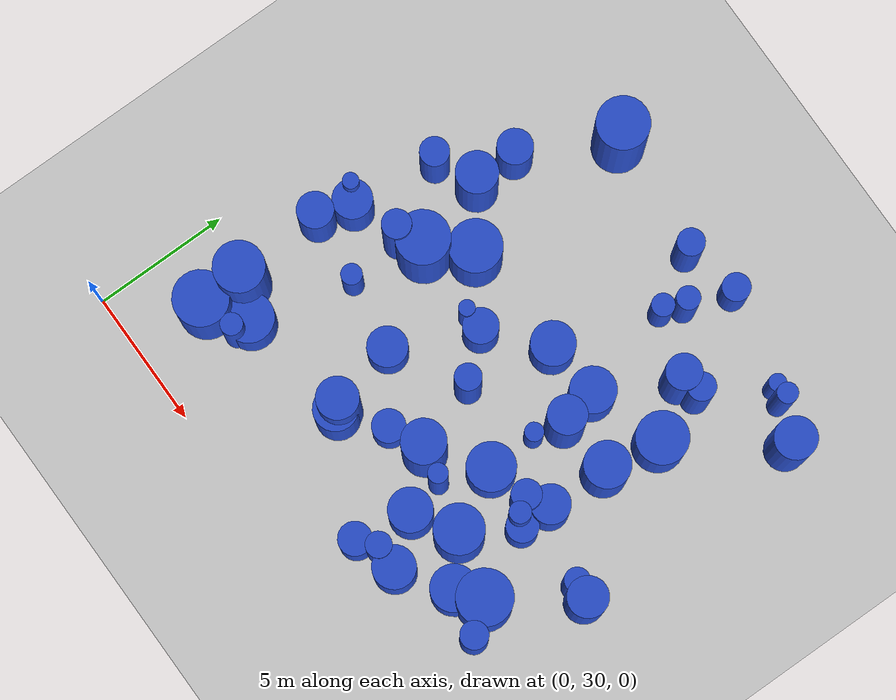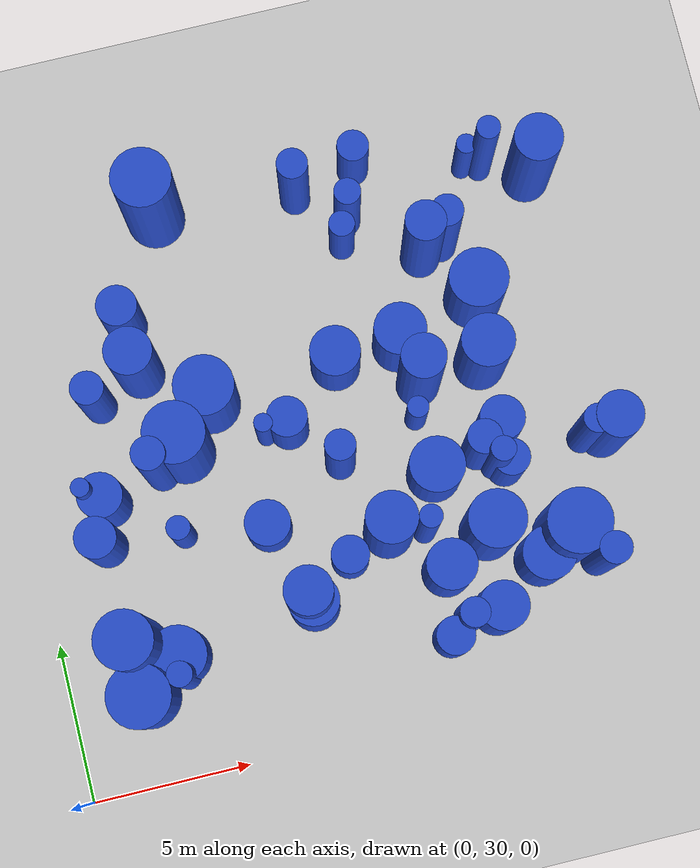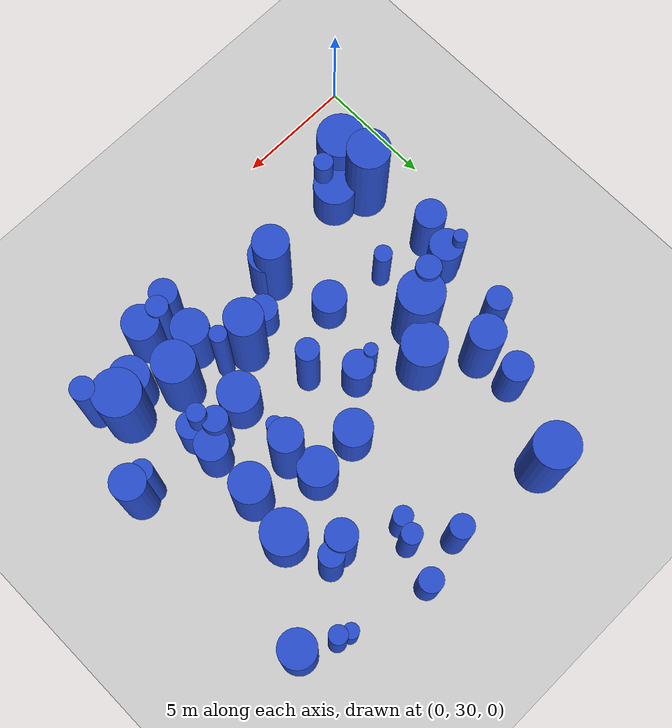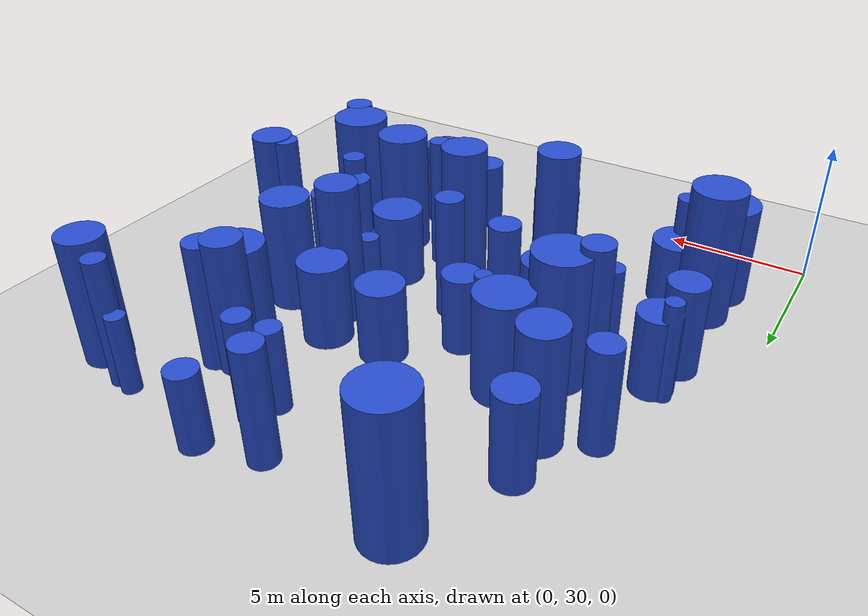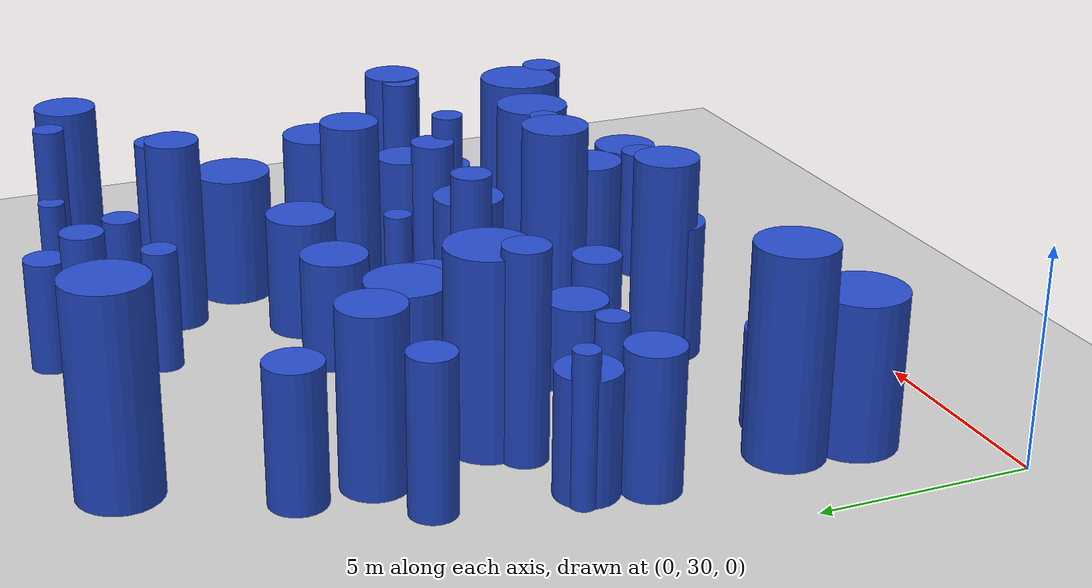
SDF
<sdf version="1.6">
 <world name="default">
  <model name="ground_plane">
   <static>1</static>
   <link name="link">
    <collision name="collision">
     <geometry><plane><normal>0 0 1</normal><size>100 100</size></plane></geometry>
     <surface><friction><ode><mu>100</mu><mu2>50</mu2></ode></friction></surface>
    </collision>
    <visual name="visual">
     <cast_shadows>0</cast_shadows>
     <geometry><plane><normal>0 0 1</normal><size>100 100</size></plane></geometry>
     <material>
      <script><uri>file://media/materials/scripts/gazebo.material</uri><name>Gazebo/Grey</name></script>
     </material>
    </visual>
   </link>
  </model>
  <model name="0">
   <static>0</static>
   <link name="link">
    <inertial>
     <mass>2</mass>
     <inertia><ixx>1.36996</ixx><ixy>0</ixy><ixz>0</ixz><iyy>1.36996</iyy><iyz>0</iyz><izz>0.08114</izz></inertia>
    </inertial>
    <collision name="collision">
     <geometry><cylinder><length>2.82424</length><radius>0.284851</radius></cylinder></geometry>
     <surface><contact><collide_without_contact>1</collide_without_contact></contact></surface>
    </collision>
    <visual name="visual">
     <geometry><cylinder><length>2.82424</length><radius>0.284851</radius></cylinder></geometry>
     <material>
      <script><uri>file://media/materials/scripts/gazebo.material</uri><name>Gazebo/Blue</name></script>
     </material>
    </visual>
    <gravity>0</gravity>
   </link>
   <pose>5.6814 47.6667 1.41212 0 -0 0</pose>
  </model>
  <model name="8">
   <static>0</static>
   <link name="link">
    <inertial>
     <mass>2</mass>
     <inertia>
      <ixx>0.880956</ixx>
      <ixy>0</ixy>
      <ixz>0</ixz>
      <iyy>0.880956</iyy>
      <iyz>0</iyz>
      <izz>0.363118</izz>
     </inertia>
    </inertial>
    <collision name="collision">
     <geometry><cylinder><length>2.04851</length><radius>0.602593</radius></cylinder></geometry>
     <surface><contact><collide_without_contact>1</collide_without_contact></contact></surface>
    </collision>
    <visual name="visual">
     <geometry><cylinder><length>2.04851</length><radius>0.602593</radius></cylinder></geometry>
     <material>
      <script><uri>file://media/materials/scripts/gazebo.material</uri><name>Gazebo/Blue</name></script>
     </material>
    </visual>
    <gravity>0</gravity>
   </link>
   <pose>9.53747 35.5063 1.02425 0 -0 0</pose>
  </model>
  <model name="24">
   <static>0</static>
   <link name="link">
    <inertial>
     <mass>2</mass>
     <inertia><ixx>2.24741</ixx><ixy>0</ixy><ixz>0</ixz><iyy>2.24741</iyy><iyz>0</iyz><izz>0.278521</izz></inertia>
    </inertial>
    <collision name="collision">
     <geometry><cylinder><length>3.55653</length><radius>0.527751</radius></cylinder></geometry>
     <surface><contact><collide_without_contact>1</collide_without_contact></contact></surface>
    </collision>
    <visual name="visual">
     <geometry><cylinder><length>3.55653</length><radius>0.527751</radius></cylinder></geometry>
     <material>
      <script><uri>file://media/materials/scripts/gazebo.material</uri><name>Gazebo/Blue</name></script>
     </material>
    </visual>
    <gravity>0</gravity>
   </link>
   <pose>2.92159 42.1563 1.77827 0 -0 0</pose>
  </model>
  <model name="31">
   <static>0</static>
   <link name="link">
    <inertial>
     <mass>2</mass>
     <inertia><ixx>3.2928</ixx><ixy>0</ixy><ixz>0</ixz><iyy>3.2928</iyy><iyz>0</iyz><izz>0.138663</izz></inertia>
    </inertial>
    <collision name="collision">
     <geometry><cylinder><length>4.39782</length><radius>0.372375</radius></cylinder></geometry>
     <surface><contact><collide_without_contact>1</collide_without_contact></contact></surface>
    </collision>
    <visual name="visual">
     <geometry><cylinder><length>4.39782</length><radius>0.372375</radius></cylinder></geometry>
     <material>
      <script><uri>file://media/materials/scripts/gazebo.material</uri><name>Gazebo/Blue</name></script>
     </material>
    </visual>
    <gravity>0</gravity>
   </link>
   <pose>16.6334 46.9755 2.19891 0 -0 0</pose>
  </model>
  <model name="37">
   <static>0</static>
   <link name="link">
    <inertial>
     <mass>2</mass>
     <inertia><ixx>3.28854</ixx><ixy>0</ixy><ixz>0</ixz><iyy>3.28854</iyy><iyz>0</iyz><izz>0.530708</izz></inertia>
    </inertial>
    <collision name="collision">
     <geometry><cylinder><length>4.259</length><radius>0.728497</radius></cylinder></geometry>
     <surface><contact><collide_without_contact>1</collide_without_contact></contact></surface>
    </collision>
    <visual name="visual">
     <geometry><cylinder><length>4.259</length><radius>0.728497</radius></cylinder></geometry>
     <material>
      <script><uri>file://media/materials/scripts/gazebo.material</uri><name>Gazebo/Blue</name></script>
     </material>
    </visual>
    <gravity>0</gravity>
   </link>
   <pose>18.3013 37.5129 2.1295 0 -0 0</pose>
  </model>
  <model name="41">
   <static>0</static>
   <link name="link">
    <inertial>
     <mass>2</mass>
     <inertia>
      <ixx>2.56622</ixx>
      <ixy>0</ixy>
      <ixz>0</ixz>
      <iyy>2.56622</iyy>
      <iyz>0</iyz>
      <izz>0.0997864</izz>
     </inertia>
    </inertial>
    <collision name="collision">
     <geometry><cylinder><length>3.88561</length><radius>0.31589</radius></cylinder></geometry>
     <surface><contact><collide_without_contact>1</collide_without_contact></contact></surface>
    </collision>
    <visual name="visual">
     <geometry><cylinder><length>3.88561</length><radius>0.31589</radius></cylinder></geometry>
     <material>
      <script><uri>file://media/materials/scripts/gazebo.material</uri><name>Gazebo/Blue</name></script>
     </material>
    </visual>
    <gravity>0</gravity>
   </link>
   <pose>6.3063 47.4544 1.9428 0 -0 0</pose>
  </model>
  <model name="42">
   <static>0</static>
   <link name="link">
    <inertial>
     <mass>2</mass>
     <inertia><ixx>1.89672</ixx><ixy>0</ixy><ixz>0</ixz><iyy>1.89672</iyy><iyz>0</iyz><izz>0.219729</izz></inertia>
    </inertial>
    <collision name="collision">
     <geometry><cylinder><length>3.27432</length><radius>0.468753</radius></cylinder></geometry>
     <surface><contact><collide_without_contact>1</collide_without_contact></contact></surface>
    </collision>
    <visual name="visual">
     <geometry><cylinder><length>3.27432</length><radius>0.468753</radius></cylinder></geometry>
     <material>
      <script><uri>file://media/materials/scripts/gazebo.material</uri><name>Gazebo/Blue</name></script>
     </material>
    </visual>
    <gravity>0</gravity>
   </link>
   <pose>12.7332 32.8428 1.63716 0 -0 0</pose>
  </model>
  <model name="62">
   <static>0</static>
   <link name="link">
    <inertial>
     <mass>2</mass>
     <inertia><ixx>2.09933</ixx><ixy>0</ixy><ixz>0</ixz><iyy>2.09933</iyy><iyz>0</iyz><izz>0.629499</izz></inertia>
    </inertial>
    <collision name="collision">
     <geometry><cylinder><length>3.27223</length><radius>0.79341</radius></cylinder></geometry>
     <surface><contact><collide_without_contact>1</collide_without_contact></contact></surface>
    </collision>
    <visual name="visual">
     <geometry><cylinder><length>3.27223</length><radius>0.79341</radius></cylinder></geometry>
     <material>
      <script><uri>file://media/materials/scripts/gazebo.material</uri><name>Gazebo/Blue</name></script>
     </material>
    </visual>
    <gravity>0</gravity>
   </link>
   <pose>8.11835 34.326 1.63611 0 -0 0</pose>
  </model>
  <model name="64">
   <static>0</static>
   <link name="link">
    <inertial>
     <mass>2</mass>
     <inertia><ixx>3.78361</ixx><ixy>0</ixy><ixz>0</ixz><iyy>3.78361</iyy><iyz>0</iyz><izz>0.408646</izz></inertia>
    </inertial>
    <collision name="collision">
     <geometry><cylinder><length>4.63419</length><radius>0.639254</radius></cylinder></geometry>
     <surface><contact><collide_without_contact>1</collide_without_contact></contact></surface>
    </collision>
    <visual name="visual">
     <geometry><cylinder><length>4.63419</length><radius>0.639254</radius></cylinder></geometry>
     <material>
      <script><uri>file://media/materials/scripts/gazebo.material</uri><name>Gazebo/Blue</name></script>
     </material>
    </visual>
    <gravity>0</gravity>
   </link>
   <pose>14.0493 44.533 2.3171 0 -0 0</pose>
  </model>
  <model name="81">
   <static>0</static>
   <link name="link">
    <inertial>
     <mass>2</mass>
     <inertia><ixx>1.76356</ixx><ixy>0</ixy><ixz>0</ixz><iyy>1.76356</iyy><iyz>0</iyz><izz>0.697005</izz></inertia>
    </inertial>
    <collision name="collision">
     <geometry><cylinder><length>2.91382</length><radius>0.834868</radius></cylinder></geometry>
     <surface><contact><collide_without_contact>1</collide_without_contact></contact></surface>
    </collision>
    <visual name="visual">
     <geometry><cylinder><length>2.91382</length><radius>0.834868</radius></cylinder></geometry>
     <material>
      <script><uri>file://media/materials/scripts/gazebo.material</uri><name>Gazebo/Blue</name></script>
     </material>
    </visual>
    <gravity>0</gravity>
   </link>
   <pose>15.3903 34.0744 1.45691 0 -0 0</pose>
  </model>
  <model name="94">
   <static>0</static>
   <link name="link">
    <inertial>
     <mass>2</mass>
     <inertia><ixx>1.88089</ixx><ixy>0</ixy><ixz>0</ixz><iyy>1.88089</iyy><iyz>0</iyz><izz>0.49442</izz></inertia>
    </inertial>
    <collision name="collision">
     <geometry><cylinder><length>3.13082</length><radius>0.70315</radius></cylinder></geometry>
     <surface><contact><collide_without_contact>1</collide_without_contact></contact></surface>
    </collision>
    <visual name="visual">
     <geometry><cylinder><length>3.13082</length><radius>0.70315</radius></cylinder></geometry>
     <material>
      <script><uri>file://media/materials/scripts/gazebo.material</uri><name>Gazebo/Blue</name></script>
     </material>
    </visual>
    <gravity>0</gravity>
   </link>
   <pose>14.9938 38.388 1.56541 0 -0 0</pose>
  </model>
  <model name="99">
   <static>0</static>
   <link name="link">
    <inertial>
     <mass>2</mass>
     <inertia><ixx>4.30675</ixx><ixy>0</ixy><ixz>0</ixz><iyy>4.30675</iyy><iyz>0</iyz><izz>0.822599</izz></inertia>
    </inertial>
    <collision name="collision">
     <geometry><cylinder><length>4.83453</length><radius>0.906973</radius></cylinder></geometry>
     <surface><contact><collide_without_contact>1</collide_without_contact></contact></surface>
    </collision>
    <visual name="visual">
     <geometry><cylinder><length>4.83453</length><radius>0.906973</radius></cylinder></geometry>
     <material>
      <script><uri>file://media/materials/scripts/gazebo.material</uri><name>Gazebo/Blue</name></script>
     </material>
    </visual>
    <gravity>0</gravity>
   </link>
   <pose>2.47477 34.3983 2.41727 0 -0 0</pose>
  </model>
  <model name="110">
   <static>0</static>
   <link name="link">
    <inertial>
     <mass>2</mass>
     <inertia><ixx>1.24854</ixx><ixy>0</ixy><ixz>0</ixz><iyy>1.24854</iyy><iyz>0</iyz><izz>0.366607</izz></inertia>
    </inertial>
    <collision name="collision">
     <geometry><cylinder><length>2.52813</length><radius>0.605481</radius></cylinder></geometry>
     <surface><contact><collide_without_contact>1</collide_without_contact></contact></surface>
    </collision>
    <visual name="visual">
     <geometry><cylinder><length>2.52813</length><radius>0.605481</radius></cylinder></geometry>
     <material>
      <script><uri>file://media/materials/scripts/gazebo.material</uri><name>Gazebo/Blue</name></script>
     </material>
    </visual>
    <gravity>0</gravity>
   </link>
   <pose>12.0545 32.3225 1.26406 0 -0 0</pose>
  </model>
  <model name="117">
   <static>0</static>
   <link name="link">
    <inertial>
     <mass>2</mass>
     <inertia><ixx>4.22682</ixx><ixy>0</ixy><ixz>0</ixz><iyy>4.22682</iyy><iyz>0</iyz><izz>0.563313</izz></inertia>
    </inertial>
    <collision name="collision">
     <geometry><cylinder><length>4.86528</length><radius>0.750542</radius></cylinder></geometry>
     <surface><contact><collide_without_contact>1</collide_without_contact></contact></surface>
    </collision>
    <visual name="visual">
     <geometry><cylinder><length>4.86528</length><radius>0.750542</radius></cylinder></geometry>
     <material>
      <script><uri>file://media/materials/scripts/gazebo.material</uri><name>Gazebo/Blue</name></script>
     </material>
    </visual>
    <gravity>0</gravity>
   </link>
   <pose>8.03229 34.5318 2.43264 0 -0 0</pose>
  </model>
  <model name="136">
   <static>0</static>
   <link name="link">
    <inertial>
     <mass>2</mass>
     <inertia><ixx>2.16121</ixx><ixy>0</ixy><ixz>0</ixz><iyy>2.16121</iyy><iyz>0</iyz><izz>0.621583</izz></inertia>
    </inertial>
    <collision name="collision">
     <geometry><cylinder><length>3.33205</length><radius>0.788405</radius></cylinder></geometry>
     <surface><contact><collide_without_contact>1</collide_without_contact></contact></surface>
    </collision>
    <visual name="visual">
     <geometry><cylinder><length>3.33205</length><radius>0.788405</radius></cylinder></geometry>
     <material>
      <script><uri>file://media/materials/scripts/gazebo.material</uri><name>Gazebo/Blue</name></script>
     </material>
    </visual>
    <gravity>0</gravity>
   </link>
   <pose>12.4031 34.3974 1.66602 0 -0 0</pose>
  </model>
  <model name="137">
   <static>0</static>
   <link name="link">
    <inertial>
     <mass>2</mass>
     <inertia><ixx>2.99211</ixx><ixy>0</ixy><ixz>0</ixz><iyy>2.99211</iyy><iyz>0</iyz><izz>0.151954</izz></inertia>
    </inertial>
    <collision name="collision">
     <geometry><cylinder><length>4.18292</length><radius>0.389813</radius></cylinder></geometry>
     <surface><contact><collide_without_contact>1</collide_without_contact></contact></surface>
    </collision>
    <visual name="visual">
     <geometry><cylinder><length>4.18292</length><radius>0.389813</radius></cylinder></geometry>
     <material>
      <script><uri>file://media/materials/scripts/gazebo.material</uri><name>Gazebo/Blue</name></script>
     </material>
    </visual>
    <gravity>0</gravity>
   </link>
   <pose>14.6703 37.3275 2.09146 0 -0 0</pose>
  </model>
  <model name="156">
   <static>0</static>
   <link name="link">
    <inertial>
     <mass>2</mass>
     <inertia><ixx>2.79341</ixx><ixy>0</ixy><ixz>0</ixz><iyy>2.79341</iyy><iyz>0</iyz><izz>0.240916</izz></inertia>
    </inertial>
    <collision name="collision">
     <geometry><cylinder><length>4.00471</length><radius>0.490832</radius></cylinder></geometry>
     <surface><contact><collide_without_contact>1</collide_without_contact></contact></surface>
    </collision>
    <visual name="visual">
     <geometry><cylinder><length>4.00471</length><radius>0.490832</radius></cylinder></geometry>
     <material>
      <script><uri>file://media/materials/scripts/gazebo.material</uri><name>Gazebo/Blue</name></script>
     </material>
    </visual>
    <gravity>0</gravity>
   </link>
   <pose>10.5676 47.3916 2.00235 0 -0 0</pose>
  </model>
  <model name="160">
   <static>0</static>
   <link name="link">
    <inertial>
     <mass>2</mass>
     <inertia>
      <ixx>1.44279</ixx>
      <ixy>0</ixy>
      <ixz>0</ixz>
      <iyy>1.44279</iyy>
      <iyz>0</iyz>
      <izz>0.0869253</izz>
     </inertia>
    </inertial>
    <collision name="collision">
     <geometry><cylinder><length>2.89758</length><radius>0.294831</radius></cylinder></geometry>
     <surface><contact><collide_without_contact>1</collide_without_contact></contact></surface>
    </collision>
    <visual name="visual">
     <geometry><cylinder><length>2.89758</length><radius>0.294831</radius></cylinder></geometry>
     <material>
      <script><uri>file://media/materials/scripts/gazebo.material</uri><name>Gazebo/Blue</name></script>
     </material>
    </visual>
    <gravity>0</gravity>
   </link>
   <pose>7.86873 39.9815 1.44879 0 -0 0</pose>
  </model>
  <model name="170">
   <static>0</static>
   <link name="link">
    <inertial>
     <mass>2</mass>
     <inertia><ixx>2.13715</ixx><ixy>0</ixy><ixz>0</ixz><iyy>2.13715</iyy><iyz>0</iyz><izz>0.87674</izz></inertia>
    </inertial>
    <collision name="collision">
     <geometry><cylinder><length>3.1926</length><radius>0.936344</radius></cylinder></geometry>
     <surface><contact><collide_without_contact>1</collide_without_contact></contact></surface>
    </collision>
    <visual name="visual">
     <geometry><cylinder><length>3.1926</length><radius>0.936344</radius></cylinder></geometry>
     <material>
      <script><uri>file://media/materials/scripts/gazebo.material</uri><name>Gazebo/Blue</name></script>
     </material>
    </visual>
    <gravity>0</gravity>
   </link>
   <pose>15.3632 42.7831 1.5963 0 -0 0</pose>
  </model>
  <model name="193">
   <static>0</static>
   <link name="link">
    <inertial>
     <mass>2</mass>
     <inertia><ixx>3.33697</ixx><ixy>0</ixy><ixz>0</ixz><iyy>3.33697</iyy><iyz>0</iyz><izz>0.257203</izz></inertia>
    </inertial>
    <collision name="collision">
     <geometry><cylinder><length>4.38751</length><radius>0.507152</radius></cylinder></geometry>
     <surface><contact><collide_without_contact>1</collide_without_contact></contact></surface>
    </collision>
    <visual name="visual">
     <geometry><cylinder><length>4.38751</length><radius>0.507152</radius></cylinder></geometry>
     <material>
      <script><uri>file://media/materials/scripts/gazebo.material</uri><name>Gazebo/Blue</name></script>
     </material>
    </visual>
    <gravity>0</gravity>
   </link>
   <pose>14.7852 44.7538 2.19375 0 -0 0</pose>
  </model>
  <model name="201">
   <static>0</static>
   <link name="link">
    <inertial>
     <mass>2</mass>
     <inertia><ixx>3.36513</ixx><ixy>0</ixy><ixz>0</ixz><iyy>3.36513</iyy><iyz>0</iyz><izz>0.250759</izz></inertia>
    </inertial>
    <collision name="collision">
     <geometry><cylinder><length>4.40891</length><radius>0.500758</radius></cylinder></geometry>
     <surface><contact><collide_without_contact>1</collide_without_contact></contact></surface>
    </collision>
    <visual name="visual">
     <geometry><cylinder><length>4.40891</length><radius>0.500758</radius></cylinder></geometry>
     <material>
      <script><uri>file://media/materials/scripts/gazebo.material</uri><name>Gazebo/Blue</name></script>
     </material>
    </visual>
    <gravity>0</gravity>
   </link>
   <pose>17.1315 33.6689 2.20445 0 -0 0</pose>
  </model>
  <model name="205">
   <static>0</static>
   <link name="link">
    <inertial>
     <mass>2</mass>
     <inertia><ixx>4.28691</ixx><ixy>0</ixy><ixz>0</ixz><iyy>4.28691</iyy><iyz>0</iyz><izz>0.485464</izz></inertia>
    </inertial>
    <collision name="collision">
     <geometry><cylinder><length>4.92596</length><radius>0.696752</radius></cylinder></geometry>
     <surface><contact><collide_without_contact>1</collide_without_contact></contact></surface>
    </collision>
    <visual name="visual">
     <geometry><cylinder><length>4.92596</length><radius>0.696752</radius></cylinder></geometry>
     <material>
      <script><uri>file://media/materials/scripts/gazebo.material</uri><name>Gazebo/Blue</name></script>
     </material>
    </visual>
    <gravity>0</gravity>
   </link>
   <pose>12.9684 40.475 2.46298 0 -0 0</pose>
  </model>
  <model name="212">
   <static>0</static>
   <link name="link">
    <inertial>
     <mass>2</mass>
     <inertia><ixx>1.47331</ixx><ixy>0</ixy><ixz>0</ixz><iyy>1.47331</iyy><iyz>0</iyz><izz>0.638494</izz></inertia>
    </inertial>
    <collision name="collision">
     <geometry><cylinder><length>2.63142</length><radius>0.799058</radius></cylinder></geometry>
     <surface><contact><collide_without_contact>1</collide_without_contact></contact></surface>
    </collision>
    <visual name="visual">
     <geometry><cylinder><length>2.63142</length><radius>0.799058</radius></cylinder></geometry>
     <material>
      <script><uri>file://media/materials/scripts/gazebo.material</uri><name>Gazebo/Blue</name></script>
     </material>
    </visual>
    <gravity>0</gravity>
   </link>
   <pose>10.5465 41.6959 1.31571 0 -0 0</pose>
  </model>
  <model name="216">
   <static>0</static>
   <link name="link">
    <inertial>
     <mass>2</mass>
     <inertia><ixx>3.05983</ixx><ixy>0</ixy><ixz>0</ixz><iyy>3.05983</iyy><iyz>0</iyz><izz>0.567114</izz></inertia>
    </inertial>
    <collision name="collision">
     <geometry><cylinder><length>4.08138</length><radius>0.753069</radius></cylinder></geometry>
     <surface><contact><collide_without_contact>1</collide_without_contact></contact></surface>
    </collision>
    <visual name="visual">
     <geometry><cylinder><length>4.08138</length><radius>0.753069</radius></cylinder></geometry>
     <material>
      <script><uri>file://media/materials/scripts/gazebo.material</uri><name>Gazebo/Blue</name></script>
     </material>
    </visual>
    <gravity>0</gravity>
   </link>
   <pose>4.41696 42.8697 2.04069 0 -0 0</pose>
  </model>
  <model name="218">
   <static>0</static>
   <link name="link">
    <inertial>
     <mass>2</mass>
     <inertia><ixx>2.57473</ixx><ixy>0</ixy><ixz>0</ixz><iyy>2.57473</iyy><iyz>0</iyz><izz>0.894473</izz></inertia>
    </inertial>
    <collision name="collision">
     <geometry><cylinder><length>3.57281</length><radius>0.945766</radius></cylinder></geometry>
     <surface><contact><collide_without_contact>1</collide_without_contact></contact></surface>
    </collision>
    <visual name="visual">
     <geometry><cylinder><length>3.57281</length><radius>0.945766</radius></cylinder></geometry>
     <material>
      <script><uri>file://media/materials/scripts/gazebo.material</uri><name>Gazebo/Blue</name></script>
     </material>
    </visual>
    <gravity>0</gravity>
   </link>
   <pose>6.38048 41.4124 1.7864 0 -0 0</pose>
  </model>
  <model name="230">
   <static>0</static>
   <link name="link">
    <inertial>
     <mass>2</mass>
     <inertia><ixx>1.43272</ixx><ixy>0</ixy><ixz>0</ixz><iyy>1.43272</iyy><iyz>0</iyz><izz>0.334677</izz></inertia>
    </inertial>
    <collision name="collision">
     <geometry><cylinder><length>2.75541</length><radius>0.578513</radius></cylinder></geometry>
     <surface><contact><collide_without_contact>1</collide_without_contact></contact></surface>
    </collision>
    <visual name="visual">
     <geometry><cylinder><length>2.75541</length><radius>0.578513</radius></cylinder></geometry>
     <material>
      <script><uri>file://media/materials/scripts/gazebo.material</uri><name>Gazebo/Blue</name></script>
     </material>
    </visual>
    <gravity>0</gravity>
   </link>
   <pose>15.022 37.1932 1.3777 0 -0 0</pose>
  </model>
  <model name="251">
   <static>0</static>
   <link name="link">
    <inertial>
     <mass>2</mass>
     <inertia><ixx>1.27218</ixx><ixy>0</ixy><ixz>0</ixz><iyy>1.27218</iyy><iyz>0</iyz><izz>0.816959</izz></inertia>
    </inertial>
    <collision name="collision">
     <geometry><cylinder><length>2.27645</length><radius>0.903858</radius></cylinder></geometry>
     <surface><contact><collide_without_contact>1</collide_without_contact></contact></surface>
    </collision>
    <visual name="visual">
     <geometry><cylinder><length>2.27645</length><radius>0.903858</radius></cylinder></geometry>
     <material>
      <script><uri>file://media/materials/scripts/gazebo.material</uri><name>Gazebo/Blue</name></script>
     </material>
    </visual>
    <gravity>0</gravity>
   </link>
   <pose>3.72266 33.7556 1.13822 0 -0 0</pose>
  </model>
  <model name="269">
   <static>0</static>
   <link name="link">
    <inertial>
     <mass>2</mass>
     <inertia><ixx>3.68498</ixx><ixy>0</ixy><ixz>0</ixz><iyy>3.68498</iyy><iyz>0</iyz><izz>0.790231</izz></inertia>
    </inertial>
    <collision name="collision">
     <geometry><cylinder><length>4.44288</length><radius>0.888949</radius></cylinder></geometry>
     <surface><contact><collide_without_contact>1</collide_without_contact></contact></surface>
    </collision>
    <visual name="visual">
     <geometry><cylinder><length>4.44288</length><radius>0.888949</radius></cylinder></geometry>
     <material>
      <script><uri>file://media/materials/scripts/gazebo.material</uri><name>Gazebo/Blue</name></script>
     </material>
    </visual>
    <gravity>0</gravity>
   </link>
   <pose>13.9512 35.3144 2.22144 0 -0 0</pose>
  </model>
  <model name="271">
   <static>0</static>
   <link name="link">
    <inertial>
     <mass>2</mass>
     <inertia><ixx>3.08518</ixx><ixy>0</ixy><ixz>0</ixz><iyy>3.08518</iyy><iyz>0</iyz><izz>0.201829</izz></inertia>
    </inertial>
    <collision name="collision">
     <geometry><cylinder><length>4.2315</length><radius>0.449254</radius></cylinder></geometry>
     <surface><contact><collide_without_contact>1</collide_without_contact></contact></surface>
    </collision>
    <visual name="visual">
     <geometry><cylinder><length>4.2315</length><radius>0.449254</radius></cylinder></geometry>
     <material>
      <script><uri>file://media/materials/scripts/gazebo.material</uri><name>Gazebo/Blue</name></script>
     </material>
    </visual>
    <gravity>0</gravity>
   </link>
   <pose>17.6331 37.5452 2.11575 0 -0 0</pose>
  </model>
  <model name="279">
   <static>0</static>
   <link name="link">
    <inertial>
     <mass>2</mass>
     <inertia><ixx>1.39887</ixx><ixy>0</ixy><ixz>0</ixz><iyy>1.39887</iyy><iyz>0</iyz><izz>0.144076</izz></inertia>
    </inertial>
    <collision name="collision">
     <geometry><cylinder><length>2.82152</length><radius>0.379574</radius></cylinder></geometry>
     <surface><contact><collide_without_contact>1</collide_without_contact></contact></surface>
    </collision>
    <visual name="visual">
     <geometry><cylinder><length>2.82152</length><radius>0.379574</radius></cylinder></geometry>
     <material>
      <script><uri>file://media/materials/scripts/gazebo.material</uri><name>Gazebo/Blue</name></script>
     </material>
    </visual>
    <gravity>0</gravity>
   </link>
   <pose>4.62608 37.4561 1.41076 0 -0 0</pose>
  </model>
  <model name="304">
   <static>0</static>
   <link name="link">
    <inertial>
     <mass>2</mass>
     <inertia><ixx>1.74002</ixx><ixy>0</ixy><ixz>0</ixz><iyy>1.74002</iyy><iyz>0</iyz><izz>0.687312</izz></inertia>
    </inertial>
    <collision name="collision">
     <geometry><cylinder><length>2.89451</length><radius>0.829043</radius></cylinder></geometry>
     <surface><contact><collide_without_contact>1</collide_without_contact></contact></surface>
    </collision>
    <visual name="visual">
     <geometry><cylinder><length>2.89451</length><radius>0.829043</radius></cylinder></geometry>
     <material>
      <script><uri>file://media/materials/scripts/gazebo.material</uri><name>Gazebo/Blue</name></script>
     </material>
    </visual>
    <gravity>0</gravity>
   </link>
   <pose>12.6527 41.8498 1.44725 0 -0 0</pose>
  </model>
  <model name="314">
   <static>0</static>
   <link name="link">
    <inertial>
     <mass>2</mass>
     <inertia><ixx>1.12997</ixx><ixy>0</ixy><ixz>0</ixz><iyy>1.12997</iyy><iyz>0</iyz><izz>0.116806</izz></inertia>
    </inertial>
    <collision name="collision">
     <geometry><cylinder><length>2.53562</length><radius>0.341769</radius></cylinder></geometry>
     <surface><contact><collide_without_contact>1</collide_without_contact></contact></surface>
    </collision>
    <visual name="visual">
     <geometry><cylinder><length>2.53562</length><radius>0.341769</radius></cylinder></geometry>
     <material>
      <script><uri>file://media/materials/scripts/gazebo.material</uri><name>Gazebo/Blue</name></script>
     </material>
    </visual>
    <gravity>0</gravity>
   </link>
   <pose>12.6288 39.4047 1.26781 0 -0 0</pose>
  </model>
  <model name="330">
   <static>0</static>
   <link name="link">
    <inertial>
     <mass>2</mass>
     <inertia>
      <ixx>0.979975</ixx>
      <ixy>0</ixy>
      <ixz>0</ixz>
      <iyy>0.979975</iyy>
      <iyz>0</iyz>
      <izz>0.527954</izz>
     </inertia>
    </inertial>
    <collision name="collision">
     <geometry><cylinder><length>2.07268</length><radius>0.726604</radius></cylinder></geometry>
     <surface><contact><collide_without_contact>1</collide_without_contact></contact></surface>
    </collision>
    <visual name="visual">
     <geometry><cylinder><length>2.07268</length><radius>0.726604</radius></cylinder></geometry>
     <material>
      <script><uri>file://media/materials/scripts/gazebo.material</uri><name>Gazebo/Blue</name></script>
     </material>
    </visual>
    <gravity>0</gravity>
   </link>
   <pose>7.28643 37.0501 1.03634 0 -0 0</pose>
  </model>
  <model name="334">
   <static>0</static>
   <link name="link">
    <inertial>
     <mass>2</mass>
     <inertia><ixx>1.32807</ixx><ixy>0</ixy><ixz>0</ixz><iyy>1.32807</iyy><iyz>0</iyz><izz>0.257701</izz></inertia>
    </inertial>
    <collision name="collision">
     <geometry><cylinder><length>2.68241</length><radius>0.507642</radius></cylinder></geometry>
     <surface><contact><collide_without_contact>1</collide_without_contact></contact></surface>
    </collision>
    <visual name="visual">
     <geometry><cylinder><length>2.68241</length><radius>0.507642</radius></cylinder></geometry>
     <material>
      <script><uri>file://media/materials/scripts/gazebo.material</uri><name>Gazebo/Blue</name></script>
     </material>
    </visual>
    <gravity>0</gravity>
   </link>
   <pose>12.6171 47.9203 1.34121 0 -0 0</pose>
  </model>
  <model name="359">
   <static>0</static>
   <link name="link">
    <inertial>
     <mass>2</mass>
     <inertia><ixx>3.8892</ixx><ixy>0</ixy><ixz>0</ixz><iyy>3.8892</iyy><iyz>0</iyz><izz>0.126993</izz></inertia>
    </inertial>
    <collision name="collision">
     <geometry><cylinder><length>4.79105</length><radius>0.356361</radius></cylinder></geometry>
     <surface><contact><collide_without_contact>1</collide_without_contact></contact></surface>
    </collision>
    <visual name="visual">
     <geometry><cylinder><length>4.79105</length><radius>0.356361</radius></cylinder></geometry>
     <material>
      <script><uri>file://media/materials/scripts/gazebo.material</uri><name>Gazebo/Blue</name></script>
     </material>
    </visual>
    <gravity>0</gravity>
   </link>
   <pose>12.0371 35.8104 2.39553 0 -0 0</pose>
  </model>
  <model name="363">
   <static>0</static>
   <link name="link">
    <inertial>
     <mass>2</mass>
     <inertia><ixx>1.60275</ixx><ixy>0</ixy><ixz>0</ixz><iyy>1.60275</iyy><iyz>0</iyz><izz>0.765585</izz></inertia>
    </inertial>
    <collision name="collision">
     <geometry><cylinder><length>2.7055</length><radius>0.874977</radius></cylinder></geometry>
     <surface><contact><collide_without_contact>1</collide_without_contact></contact></surface>
    </collision>
    <visual name="visual">
     <geometry><cylinder><length>2.7055</length><radius>0.874977</radius></cylinder></geometry>
     <material>
      <script><uri>file://media/materials/scripts/gazebo.material</uri><name>Gazebo/Blue</name></script>
     </material>
    </visual>
    <gravity>0</gravity>
   </link>
   <pose>12.7606 37.5119 1.35275 0 -0 0</pose>
  </model>
  <model name="368">
   <static>0</static>
   <link name="link">
    <inertial>
     <mass>2</mass>
     <inertia><ixx>2.18213</ixx><ixy>0</ixy><ixz>0</ixz><iyy>2.18213</iyy><iyz>0</iyz><izz>0.160573</izz></inertia>
    </inertial>
    <collision name="collision">
     <geometry><cylinder><length>3.55121</length><radius>0.400715</radius></cylinder></geometry>
     <surface><contact><collide_without_contact>1</collide_without_contact></contact></surface>
    </collision>
    <visual name="visual">
     <geometry><cylinder><length>3.55121</length><radius>0.400715</radius></cylinder></geometry>
     <material>
      <script><uri>file://media/materials/scripts/gazebo.material</uri><name>Gazebo/Blue</name></script>
     </material>
    </visual>
    <gravity>0</gravity>
   </link>
   <pose>3.74248 33.1094 1.7756 0 -0 0</pose>
  </model>
  <model name="371">
   <static>0</static>
   <link name="link">
    <inertial>
     <mass>2</mass>
     <inertia><ixx>3.73424</ixx><ixy>0</ixy><ixz>0</ixz><iyy>3.73424</iyy><iyz>0</iyz><izz>0.991271</izz></inertia>
    </inertial>
    <collision name="collision">
     <geometry><cylinder><length>4.40813</length><radius>0.995626</radius></cylinder></geometry>
     <surface><contact><collide_without_contact>1</collide_without_contact></contact></surface>
    </collision>
    <visual name="visual">
     <geometry><cylinder><length>4.40813</length><radius>0.995626</radius></cylinder></geometry>
     <material>
      <script><uri>file://media/materials/scripts/gazebo.material</uri><name>Gazebo/Blue</name></script>
     </material>
    </visual>
    <gravity>0</gravity>
   </link>
   <pose>16.3095 34.688 2.20406 0 -0 0</pose>
  </model>
  <model name="372">
   <static>0</static>
   <link name="link">
    <inertial>
     <mass>2</mass>
     <inertia><ixx>4.26475</ixx><ixy>0</ixy><ixz>0</ixz><iyy>4.26475</iyy><iyz>0</iyz><izz>0.886471</izz></inertia>
    </inertial>
    <collision name="collision">
     <geometry><cylinder><length>4.78843</length><radius>0.941526</radius></cylinder></geometry>
     <surface><contact><collide_without_contact>1</collide_without_contact></contact></surface>
    </collision>
    <visual name="visual">
     <geometry><cylinder><length>4.78843</length><radius>0.941526</radius></cylinder></geometry>
     <material>
      <script><uri>file://media/materials/scripts/gazebo.material</uri><name>Gazebo/Blue</name></script>
     </material>
    </visual>
    <gravity>0</gravity>
   </link>
   <pose>6.00976 47.8016 2.39422 0 -0 0</pose>
  </model>
  <model name="373">
   <static>0</static>
   <link name="link">
    <inertial>
     <mass>2</mass>
     <inertia><ixx>3.6171</ixx><ixy>0</ixy><ixz>0</ixz><iyy>3.6171</iyy><iyz>0</iyz><izz>0.573825</izz></inertia>
    </inertial>
    <collision name="collision">
     <geometry><cylinder><length>4.47002</length><radius>0.757512</radius></cylinder></geometry>
     <surface><contact><collide_without_contact>1</collide_without_contact></contact></surface>
    </collision>
    <visual name="visual">
     <geometry><cylinder><length>4.47002</length><radius>0.757512</radius></cylinder></geometry>
     <material>
      <script><uri>file://media/materials/scripts/gazebo.material</uri><name>Gazebo/Blue</name></script>
     </material>
    </visual>
    <gravity>0</gravity>
   </link>
   <pose>18.0303 46.2992 2.23501 0 -0 0</pose>
  </model>
  <model name="374">
   <static>0</static>
   <link name="link">
    <inertial>
     <mass>2</mass>
     <inertia><ixx>1.57885</ixx><ixy>0</ixy><ixz>0</ixz><iyy>1.57885</iyy><iyz>0</iyz><izz>0.508276</izz></inertia>
    </inertial>
    <collision name="collision">
     <geometry><cylinder><length>2.81927</length><radius>0.712935</radius></cylinder></geometry>
     <surface><contact><collide_without_contact>1</collide_without_contact></contact></surface>
    </collision>
    <visual name="visual">
     <geometry><cylinder><length>2.81927</length><radius>0.712935</radius></cylinder></geometry>
     <material>
      <script><uri>file://media/materials/scripts/gazebo.material</uri><name>Gazebo/Blue</name></script>
     </material>
    </visual>
    <gravity>0</gravity>
   </link>
   <pose>2.52032 38.9832 1.40963 0 -0 0</pose>
  </model>
  <model name="402">
   <static>0</static>
   <link name="link">
    <inertial>
     <mass>2</mass>
     <inertia><ixx>1.95253</ixx><ixy>0</ixy><ixz>0</ixz><iyy>1.95253</iyy><iyz>0</iyz><izz>0.593075</izz></inertia>
    </inertial>
    <collision name="collision">
     <geometry><cylinder><length>3.15214</length><radius>0.770113</radius></cylinder></geometry>
     <surface><contact><collide_without_contact>1</collide_without_contact></contact></surface>
    </collision>
    <visual name="visual">
     <geometry><cylinder><length>3.15214</length><radius>0.770113</radius></cylinder></geometry>
     <material>
      <script><uri>file://media/materials/scripts/gazebo.material</uri><name>Gazebo/Blue</name></script>
     </material>
    </visual>
    <gravity>0</gravity>
   </link>
   <pose>13.6463 32.8316 1.57607 0 -0 0</pose>
  </model>
  <model name="406">
   <static>0</static>
   <link name="link">
    <inertial>
     <mass>2</mass>
     <inertia><ixx>1.49361</ixx><ixy>0</ixy><ixz>0</ixz><iyy>1.49361</iyy><iyz>0</iyz><izz>0.170342</izz></inertia>
    </inertial>
    <collision name="collision">
     <geometry><cylinder><length>2.907</length><radius>0.412725</radius></cylinder></geometry>
     <surface><contact><collide_without_contact>1</collide_without_contact></contact></surface>
    </collision>
    <visual name="visual">
     <geometry><cylinder><length>2.907</length><radius>0.412725</radius></cylinder></geometry>
     <material>
      <script><uri>file://media/materials/scripts/gazebo.material</uri><name>Gazebo/Blue</name></script>
     </material>
    </visual>
    <gravity>0</gravity>
   </link>
   <pose>11.6769 45.4939 1.4535 0 -0 0</pose>
  </model>
  <model name="409">
   <static>0</static>
   <link name="link">
    <inertial>
     <mass>2</mass>
     <inertia><ixx>3.29354</ixx><ixy>0</ixy><ixz>0</ixz><iyy>3.29354</iyy><iyz>0</iyz><izz>0.231657</izz></inertia>
    </inertial>
    <collision name="collision">
     <geometry><cylinder><length>4.36649</length><radius>0.481307</radius></cylinder></geometry>
     <surface><contact><collide_without_contact>1</collide_without_contact></contact></surface>
    </collision>
    <visual name="visual">
     <geometry><cylinder><length>4.36649</length><radius>0.481307</radius></cylinder></geometry>
     <material>
      <script><uri>file://media/materials/scripts/gazebo.material</uri><name>Gazebo/Blue</name></script>
     </material>
    </visual>
    <gravity>0</gravity>
   </link>
   <pose>9.95236 38.5461 2.18325 0 -0 0</pose>
  </model>
  <model name="420">
   <static>0</static>
   <link name="link">
    <inertial>
     <mass>2</mass>
     <inertia>
      <ixx>2.04584</ixx>
      <ixy>0</ixy>
      <ixz>0</ixz>
      <iyy>2.04584</iyy>
      <iyz>0</iyz>
      <izz>0.0866726</izz>
     </inertia>
    </inertial>
    <collision name="collision">
     <geometry><cylinder><length>3.46627</length><radius>0.294402</radius></cylinder></geometry>
     <surface><contact><collide_without_contact>1</collide_without_contact></contact></surface>
    </collision>
    <visual name="visual">
     <geometry><cylinder><length>3.46627</length><radius>0.294402</radius></cylinder></geometry>
     <material>
      <script><uri>file://media/materials/scripts/gazebo.material</uri><name>Gazebo/Blue</name></script>
     </material>
    </visual>
    <gravity>0</gravity>
   </link>
   <pose>2.06758 39.253 1.73314 0 -0 0</pose>
  </model>
  <model name="421">
   <static>0</static>
   <link name="link">
    <inertial>
     <mass>2</mass>
     <inertia><ixx>4.04265</ixx><ixy>0</ixy><ixz>0</ixz><iyy>4.04265</iyy><iyz>0</iyz><izz>0.274328</izz></inertia>
    </inertial>
    <collision name="collision">
     <geometry><cylinder><length>4.84076</length><radius>0.523764</radius></cylinder></geometry>
     <surface><contact><collide_without_contact>1</collide_without_contact></contact></surface>
    </collision>
    <visual name="visual">
     <geometry><cylinder><length>4.84076</length><radius>0.523764</radius></cylinder></geometry>
     <material>
      <script><uri>file://media/materials/scripts/gazebo.material</uri><name>Gazebo/Blue</name></script>
     </material>
    </visual>
    <gravity>0</gravity>
   </link>
   <pose>4.37366 39.5596 2.42038 0 -0 0</pose>
  </model>
  <model name="425">
   <static>0</static>
   <link name="link">
    <inertial>
     <mass>2</mass>
     <inertia><ixx>2.37999</ixx><ixy>0</ixy><ixz>0</ixz><iyy>2.37999</iyy><iyz>0</iyz><izz>0.291977</izz></inertia>
    </inertial>
    <collision name="collision">
     <geometry><cylinder><length>3.66115</length><radius>0.540349</radius></cylinder></geometry>
     <surface><contact><collide_without_contact>1</collide_without_contact></contact></surface>
    </collision>
    <visual name="visual">
     <geometry><cylinder><length>3.66115</length><radius>0.540349</radius></cylinder></geometry>
     <material>
      <script><uri>file://media/materials/scripts/gazebo.material</uri><name>Gazebo/Blue</name></script>
     </material>
    </visual>
    <gravity>0</gravity>
   </link>
   <pose>14.2767 37.8795 1.83057 0 -0 0</pose>
  </model>
  <model name="433">
   <static>0</static>
   <link name="link">
    <inertial>
     <mass>2</mass>
     <inertia><ixx>2.98223</ixx><ixy>0</ixy><ixz>0</ixz><iyy>2.98223</iyy><iyz>0</iyz><izz>0.68806</izz></inertia>
    </inertial>
    <collision name="collision">
     <geometry><cylinder><length>3.97859</length><radius>0.829494</radius></cylinder></geometry>
     <surface><contact><collide_without_contact>1</collide_without_contact></contact></surface>
    </collision>
    <visual name="visual">
     <geometry><cylinder><length>3.97859</length><radius>0.829494</radius></cylinder></geometry>
     <material>
      <script><uri>file://media/materials/scripts/gazebo.material</uri><name>Gazebo/Blue</name></script>
     </material>
    </visual>
    <gravity>0</gravity>
   </link>
   <pose>15.0599 40.6655 1.9893 0 -0 0</pose>
  </model>
  <model name="447">
   <static>0</static>
   <link name="link">
    <inertial>
     <mass>2</mass>
     <inertia><ixx>2.2977</ixx><ixy>0</ixy><ixz>0</ixz><iyy>2.2977</iyy><iyz>0</iyz><izz>0.179321</izz></inertia>
    </inertial>
    <collision name="collision">
     <geometry><cylinder><length>3.63981</length><radius>0.423463</radius></cylinder></geometry>
     <surface><contact><collide_without_contact>1</collide_without_contact></contact></surface>
    </collision>
    <visual name="visual">
     <geometry><cylinder><length>3.63981</length><radius>0.423463</radius></cylinder></geometry>
     <material>
      <script><uri>file://media/materials/scripts/gazebo.material</uri><name>Gazebo/Blue</name></script>
     </material>
    </visual>
    <gravity>0</gravity>
   </link>
   <pose>12.0347 46.249 1.81991 0 -0 0</pose>
  </model>
  <model name="455">
   <static>0</static>
   <link name="link">
    <inertial>
     <mass>2</mass>
     <inertia><ixx>2.60603</ixx><ixy>0</ixy><ixz>0</ixz><iyy>2.60603</iyy><iyz>0</iyz><izz>0.986117</izz></inertia>
    </inertial>
    <collision name="collision">
     <geometry><cylinder><length>3.56059</length><radius>0.993034</radius></cylinder></geometry>
     <surface><contact><collide_without_contact>1</collide_without_contact></contact></surface>
    </collision>
    <visual name="visual">
     <geometry><cylinder><length>3.56059</length><radius>0.993034</radius></cylinder></geometry>
     <material>
      <script><uri>file://media/materials/scripts/gazebo.material</uri><name>Gazebo/Blue</name></script>
     </material>
    </visual>
    <gravity>0</gravity>
   </link>
   <pose>2.41867 32.7679 1.7803 0 -0 0</pose>
  </model>
  <model name="461">
   <static>0</static>
   <link name="link">
    <inertial>
     <mass>2</mass>
     <inertia><ixx>1.43764</ixx><ixy>0</ixy><ixz>0</ixz><iyy>1.43764</iyy><iyz>0</iyz><izz>0.409635</izz></inertia>
    </inertial>
    <collision name="collision">
     <geometry><cylinder><length>2.71973</length><radius>0.640027</radius></cylinder></geometry>
     <surface><contact><collide_without_contact>1</collide_without_contact></contact></surface>
    </collision>
    <visual name="visual">
     <geometry><cylinder><length>2.71973</length><radius>0.640027</radius></cylinder></geometry>
     <material>
      <script><uri>file://media/materials/scripts/gazebo.material</uri><name>Gazebo/Blue</name></script>
     </material>
    </visual>
    <gravity>0</gravity>
   </link>
   <pose>8.62533 40.0249 1.35987 0 -0 0</pose>
  </model>
  <model name="466">
   <static>0</static>
   <link name="link">
    <inertial>
     <mass>2</mass>
     <inertia><ixx>1.27273</ixx><ixy>0</ixy><ixz>0</ixz><iyy>1.27273</iyy><iyz>0</iyz><izz>0.101786</izz></inertia>
    </inertial>
    <collision name="collision">
     <geometry><cylinder><length>2.70759</length><radius>0.319039</radius></cylinder></geometry>
     <surface><contact><collide_without_contact>1</collide_without_contact></contact></surface>
    </collision>
    <visual name="visual">
     <geometry><cylinder><length>2.70759</length><radius>0.319039</radius></cylinder></geometry>
     <material>
      <script><uri>file://media/materials/scripts/gazebo.material</uri><name>Gazebo/Blue</name></script>
     </material>
    </visual>
    <gravity>0</gravity>
   </link>
   <pose>16.0868 47.1343 1.35379 0 -0 0</pose>
  </model>
  <model name="489">
   <static>0</static>
   <link name="link">
    <inertial>
     <mass>2</mass>
     <inertia><ixx>1.98171</ixx><ixy>0</ixy><ixz>0</ixz><iyy>1.98171</iyy><iyz>0</iyz><izz>0.427416</izz></inertia>
    </inertial>
    <collision name="collision">
     <geometry><cylinder><length>3.25699</length><radius>0.653771</radius></cylinder></geometry>
     <surface><contact><collide_without_contact>1</collide_without_contact></contact></surface>
    </collision>
    <visual name="visual">
     <geometry><cylinder><length>3.25699</length><radius>0.653771</radius></cylinder></geometry>
     <material>
      <script><uri>file://media/materials/scripts/gazebo.material</uri><name>Gazebo/Blue</name></script>
     </material>
    </visual>
    <gravity>0</gravity>
   </link>
   <pose>2.15693 37.696 1.6285 0 -0 0</pose>
  </model>
  <model name="490">
   <static>0</static>
   <link name="link">
    <inertial>
     <mass>2</mass>
     <inertia><ixx>3.99273</ixx><ixy>0</ixy><ixz>0</ixz><iyy>3.99273</iyy><iyz>0</iyz><izz>0.924897</izz></inertia>
    </inertial>
    <collision name="collision">
     <geometry><cylinder><length>4.60236</length><radius>0.961716</radius></cylinder></geometry>
     <surface><contact><collide_without_contact>1</collide_without_contact></contact></surface>
    </collision>
    <visual name="visual">
     <geometry><cylinder><length>4.60236</length><radius>0.961716</radius></cylinder></geometry>
     <material>
      <script><uri>file://media/materials/scripts/gazebo.material</uri><name>Gazebo/Blue</name></script>
     </material>
    </visual>
    <gravity>0</gravity>
   </link>
   <pose>5.23199 40.0379 2.30118 0 -0 0</pose>
  </model>
  <model name="491">
   <static>0</static>
   <link name="link">
    <inertial>
     <mass>2</mass>
     <inertia><ixx>1.86578</ixx><ixy>0</ixy><ixz>0</ixz><iyy>1.86578</iyy><iyz>0</iyz><izz>0.414695</izz></inertia>
    </inertial>
    <collision name="collision">
     <geometry><cylinder><length>3.15446</length><radius>0.643968</radius></cylinder></geometry>
     <surface><contact><collide_without_contact>1</collide_without_contact></contact></surface>
    </collision>
    <visual name="visual">
     <geometry><cylinder><length>3.15446</length><radius>0.643968</radius></cylinder></geometry>
     <material>
      <script><uri>file://media/materials/scripts/gazebo.material</uri><name>Gazebo/Blue</name></script>
     </material>
    </visual>
    <gravity>0</gravity>
   </link>
   <pose>4.32678 44.5387 1.57723 0 -0 0</pose>
  </model>
  <model name="492">
   <static>0</static>
   <link name="link">
    <inertial>
     <mass>2</mass>
     <inertia><ixx>4.35632</ixx><ixy>0</ixy><ixz>0</ixz><iyy>4.35632</iyy><iyz>0</iyz><izz>0.634737</izz></inertia>
    </inertial>
    <collision name="collision">
     <geometry><cylinder><length>4.92278</length><radius>0.796704</radius></cylinder></geometry>
     <surface><contact><collide_without_contact>1</collide_without_contact></contact></surface>
    </collision>
    <visual name="visual">
     <geometry><cylinder><length>4.92278</length><radius>0.796704</radius></cylinder></geometry>
     <material>
      <script><uri>file://media/materials/scripts/gazebo.material</uri><name>Gazebo/Blue</name></script>
     </material>
    </visual>
    <gravity>0</gravity>
   </link>
   <pose>10.9034 36.0333 2.46139 0 -0 0</pose>
  </model>
 </world>
</sdf>
